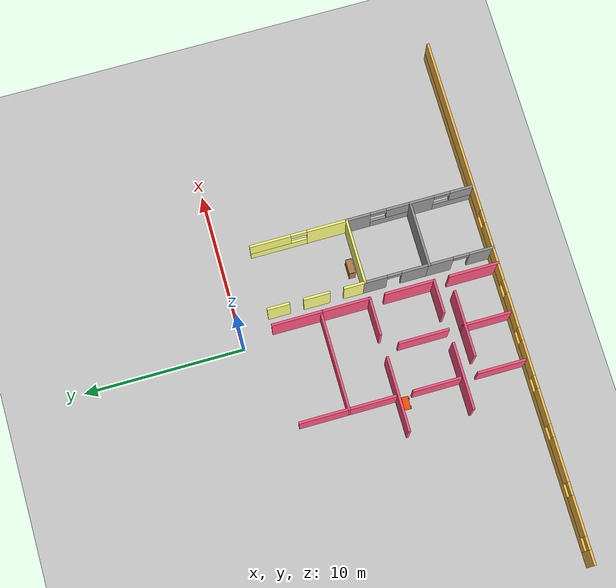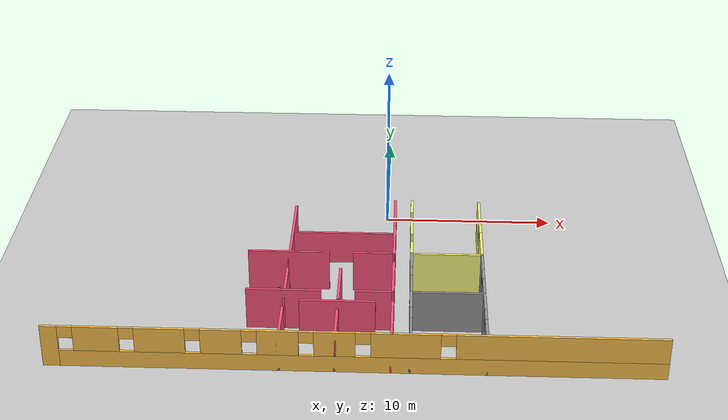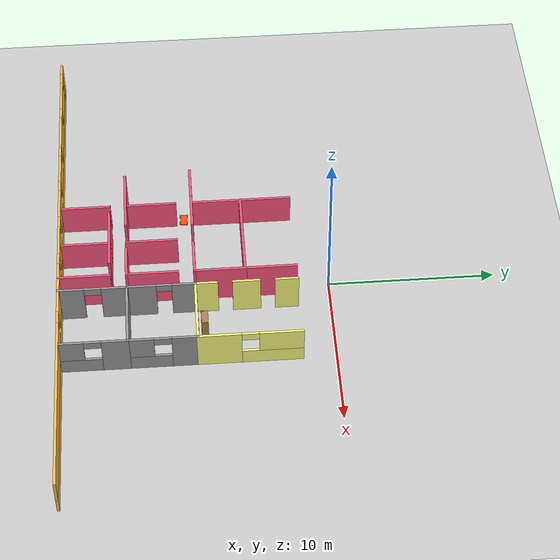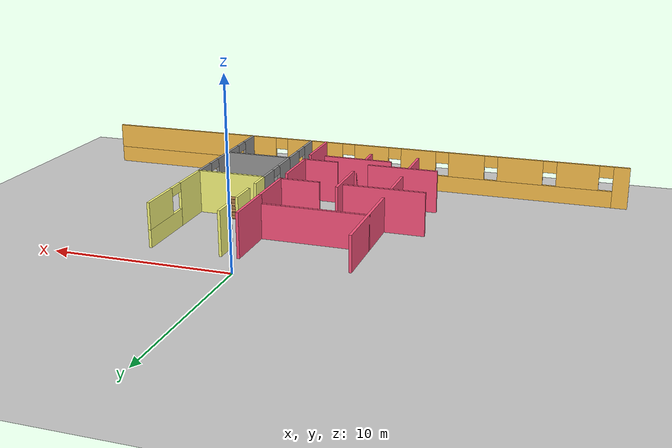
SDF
<sdf version="1.6">
 <world name="default">
  <model name="ground_plane">
   <static>1</static>
   <link name="link">
    <collision name="collision">
     <geometry><plane><normal>0 0 1</normal><size>100 100</size></plane></geometry>
     <surface><friction><ode><mu>100</mu><mu2>50</mu2></ode></friction></surface>
    </collision>
    <visual name="visual">
     <cast_shadows>0</cast_shadows>
     <geometry><plane><normal>0 0 1</normal><size>100 100</size></plane></geometry>
     <material>
      <script><uri>file://media/materials/scripts/gazebo.material</uri><name>Gazebo/Grey</name></script>
     </material>
    </visual>
   </link>
  </model>
  <model name="myWorld">
   <pose>-1.5 0 0 0 -0 0</pose>
   <link name="Wall_0">
    <pose>0 -16 0 0 -0 0</pose>
    <visual name="Wall_0_Visual_0">
     <pose>-16.1125 0 1.25 0 -0 0</pose>
     <geometry><box><size>0.925 0.15 2.5</size></box></geometry>
     <material>
      <script><uri>file://media/materials/scripts/gazebo.material</uri><name>Gazebo/Grey</name></script>
      <ambient>1 0.764706 0.305882 1</ambient>
     </material>
     <meta><layer>0</layer></meta>
    </visual>
    <collision name="Wall_0_Collision_0">
     <geometry><box><size>0.925 0.15 2.5</size></box></geometry>
     <pose>-16.1125 0 1.25 0 -0 0</pose>
    </collision>
    <visual name="Wall_0_Visual_1">
     <pose>0.4625 0 0.5 0 -0 0</pose>
     <geometry><box><size>32.225 0.15 1</size></box></geometry>
     <material>
      <script><uri>file://media/materials/scripts/gazebo.material</uri><name>Gazebo/Grey</name></script>
      <ambient>1 0.764706 0.305882 1</ambient>
     </material>
     <meta><layer>0</layer></meta>
    </visual>
    <collision name="Wall_0_Collision_1">
     <geometry><box><size>32.225 0.15 1</size></box></geometry>
     <pose>0.4625 0 0.5 0 -0 0</pose>
    </collision>
    <visual name="Wall_0_Visual_2">
     <pose>-13.625 0 1.75 0 -0 0</pose>
     <geometry><box><size>2.45 0.15 1.5</size></box></geometry>
     <material>
      <script><uri>file://media/materials/scripts/gazebo.material</uri><name>Gazebo/Grey</name></script>
      <ambient>1 0.764706 0.305882 1</ambient>
     </material>
     <meta><layer>0</layer></meta>
    </visual>
    <collision name="Wall_0_Collision_2">
     <geometry><box><size>2.45 0.15 1.5</size></box></geometry>
     <pose>-13.625 0 1.75 0 -0 0</pose>
    </collision>
    <visual name="Wall_0_Visual_3">
     <pose>-10.25 0 1.75 0 -0 0</pose>
     <geometry><box><size>2.7 0.15 1.5</size></box></geometry>
     <material>
      <script><uri>file://media/materials/scripts/gazebo.material</uri><name>Gazebo/Grey</name></script>
      <ambient>1 0.764706 0.305882 1</ambient>
     </material>
     <meta><layer>0</layer></meta>
    </visual>
    <collision name="Wall_0_Collision_3">
     <geometry><box><size>2.7 0.15 1.5</size></box></geometry>
     <pose>-10.25 0 1.75 0 -0 0</pose>
    </collision>
    <visual name="Wall_0_Visual_4">
     <pose>-7 0 1.75 0 -0 0</pose>
     <geometry><box><size>2.2 0.15 1.5</size></box></geometry>
     <material>
      <script><uri>file://media/materials/scripts/gazebo.material</uri><name>Gazebo/Grey</name></script>
      <ambient>1 0.764706 0.305882 1</ambient>
     </material>
     <meta><layer>0</layer></meta>
    </visual>
    <collision name="Wall_0_Collision_4">
     <geometry><box><size>2.2 0.15 1.5</size></box></geometry>
     <pose>-7 0 1.75 0 -0 0</pose>
    </collision>
    <visual name="Wall_0_Visual_5">
     <pose>-4 0 1.75 0 -0 0</pose>
     <geometry><box><size>2.2 0.15 1.5</size></box></geometry>
     <material>
      <script><uri>file://media/materials/scripts/gazebo.material</uri><name>Gazebo/Grey</name></script>
      <ambient>1 0.764706 0.305882 1</ambient>
     </material>
     <meta><layer>0</layer></meta>
    </visual>
    <collision name="Wall_0_Collision_5">
     <geometry><box><size>2.2 0.15 1.5</size></box></geometry>
     <pose>-4 0 1.75 0 -0 0</pose>
    </collision>
    <visual name="Wall_0_Visual_6">
     <pose>-1 0 1.75 0 -0 0</pose>
     <geometry><box><size>2.2 0.15 1.5</size></box></geometry>
     <material>
      <script><uri>file://media/materials/scripts/gazebo.material</uri><name>Gazebo/Grey</name></script>
      <ambient>1 0.764706 0.305882 1</ambient>
     </material>
     <meta><layer>0</layer></meta>
    </visual>
    <collision name="Wall_0_Collision_6">
     <geometry><box><size>2.2 0.15 1.5</size></box></geometry>
     <pose>-1 0 1.75 0 -0 0</pose>
    </collision>
    <visual name="Wall_0_Visual_7">
     <pose>2.75 0 1.75 0 -0 0</pose>
     <geometry><box><size>3.7 0.15 1.5</size></box></geometry>
     <material>
      <script><uri>file://media/materials/scripts/gazebo.material</uri><name>Gazebo/Grey</name></script>
      <ambient>1 0.764706 0.305882 1</ambient>
     </material>
     <meta><layer>0</layer></meta>
    </visual>
    <collision name="Wall_0_Collision_7">
     <geometry><box><size>3.7 0.15 1.5</size></box></geometry>
     <pose>2.75 0 1.75 0 -0 0</pose>
    </collision>
    <visual name="Wall_0_Visual_8">
     <pose>10.9875 0 1.75 0 -0 0</pose>
     <geometry><box><size>11.175 0.15 1.5</size></box></geometry>
     <material>
      <script><uri>file://media/materials/scripts/gazebo.material</uri><name>Gazebo/Grey</name></script>
      <ambient>1 0.764706 0.305882 1</ambient>
     </material>
     <meta><layer>0</layer></meta>
    </visual>
    <collision name="Wall_0_Collision_8">
     <geometry><box><size>11.175 0.15 1.5</size></box></geometry>
     <pose>10.9875 0 1.75 0 -0 0</pose>
    </collision>
    <visual name="Wall_0_Visual_9">
     <pose>-15.25 0 2.15 0 -0 0</pose>
     <geometry><box><size>0.8 0.15 0.7</size></box></geometry>
     <material>
      <script><uri>file://media/materials/scripts/gazebo.material</uri><name>Gazebo/Grey</name></script>
      <ambient>1 0.764706 0.305882 1</ambient>
     </material>
     <meta><layer>0</layer></meta>
    </visual>
    <collision name="Wall_0_Collision_9">
     <geometry><box><size>0.8 0.15 0.7</size></box></geometry>
     <pose>-15.25 0 2.15 0 -0 0</pose>
    </collision>
    <visual name="Wall_0_Visual_10">
     <pose>-12 0 2.15 0 -0 0</pose>
     <geometry><box><size>0.8 0.15 0.7</size></box></geometry>
     <material>
      <script><uri>file://media/materials/scripts/gazebo.material</uri><name>Gazebo/Grey</name></script>
      <ambient>1 0.764706 0.305882 1</ambient>
     </material>
     <meta><layer>0</layer></meta>
    </visual>
    <collision name="Wall_0_Collision_10">
     <geometry><box><size>0.8 0.15 0.7</size></box></geometry>
     <pose>-12 0 2.15 0 -0 0</pose>
    </collision>
    <visual name="Wall_0_Visual_11">
     <pose>-8.5 0 2.15 0 -0 0</pose>
     <geometry><box><size>0.8 0.15 0.7</size></box></geometry>
     <material>
      <script><uri>file://media/materials/scripts/gazebo.material</uri><name>Gazebo/Grey</name></script>
      <ambient>1 0.764706 0.305882 1</ambient>
     </material>
     <meta><layer>0</layer></meta>
    </visual>
    <collision name="Wall_0_Collision_11">
     <geometry><box><size>0.8 0.15 0.7</size></box></geometry>
     <pose>-8.5 0 2.15 0 -0 0</pose>
    </collision>
    <visual name="Wall_0_Visual_12">
     <pose>-5.5 0 2.15 0 -0 0</pose>
     <geometry><box><size>0.8 0.15 0.7</size></box></geometry>
     <material>
      <script><uri>file://media/materials/scripts/gazebo.material</uri><name>Gazebo/Grey</name></script>
      <ambient>1 0.764706 0.305882 1</ambient>
     </material>
     <meta><layer>0</layer></meta>
    </visual>
    <collision name="Wall_0_Collision_12">
     <geometry><box><size>0.8 0.15 0.7</size></box></geometry>
     <pose>-5.5 0 2.15 0 -0 0</pose>
    </collision>
    <visual name="Wall_0_Visual_13">
     <pose>-2.5 0 2.15 0 -0 0</pose>
     <geometry><box><size>0.8 0.15 0.7</size></box></geometry>
     <material>
      <script><uri>file://media/materials/scripts/gazebo.material</uri><name>Gazebo/Grey</name></script>
      <ambient>1 0.764706 0.305882 1</ambient>
     </material>
     <meta><layer>0</layer></meta>
    </visual>
    <collision name="Wall_0_Collision_13">
     <geometry><box><size>0.8 0.15 0.7</size></box></geometry>
     <pose>-2.5 0 2.15 0 -0 0</pose>
    </collision>
    <visual name="Wall_0_Visual_14">
     <pose>0.5 0 2.15 0 -0 0</pose>
     <geometry><box><size>0.8 0.15 0.7</size></box></geometry>
     <material>
      <script><uri>file://media/materials/scripts/gazebo.material</uri><name>Gazebo/Grey</name></script>
      <ambient>1 0.764706 0.305882 1</ambient>
     </material>
     <meta><layer>0</layer></meta>
    </visual>
    <collision name="Wall_0_Collision_14">
     <geometry><box><size>0.8 0.15 0.7</size></box></geometry>
     <pose>0.5 0 2.15 0 -0 0</pose>
    </collision>
    <visual name="Wall_0_Visual_15">
     <pose>5 0 2.15 0 -0 0</pose>
     <geometry><box><size>0.8 0.15 0.7</size></box></geometry>
     <material>
      <script><uri>file://media/materials/scripts/gazebo.material</uri><name>Gazebo/Grey</name></script>
      <ambient>1 0.764706 0.305882 1</ambient>
     </material>
     <meta><layer>0</layer></meta>
    </visual>
    <collision name="Wall_0_Collision_15">
     <geometry><box><size>0.8 0.15 0.7</size></box></geometry>
     <pose>5 0 2.15 0 -0 0</pose>
    </collision>
   </link>
   <link name="Wall_106">
    <collision name="Wall_106_Collision">
     <geometry><box><size>3.15 0.15 2</size></box></geometry>
     <pose>0 0 1 0 -0 0</pose>
    </collision>
    <visual name="Wall_106_Visual">
     <pose>0 0 1 0 -0 0</pose>
     <geometry><box><size>3.15 0.15 2</size></box></geometry>
     <material>
      <script><uri>file://media/materials/scripts/gazebo.material</uri><name>Gazebo/Grey</name></script>
      <ambient>1 0.333333 0.498039 1</ambient>
     </material>
     <meta><layer>0</layer></meta>
    </visual>
    <pose>-4 -10.5 0 0 0 -1.5708</pose>
   </link>
   <link name="Wall_108">
    <collision name="Wall_108_Collision">
     <geometry><box><size>3.15 0.15 2</size></box></geometry>
     <pose>0 0 1 0 -0 0</pose>
    </collision>
    <visual name="Wall_108_Visual">
     <pose>0 0 1 0 -0 0</pose>
     <geometry><box><size>3.15 0.15 2</size></box></geometry>
     <material>
      <script><uri>file://media/materials/scripts/gazebo.material</uri><name>Gazebo/Grey</name></script>
      <ambient>1 0.333333 0.498039 1</ambient>
     </material>
     <meta><layer>0</layer></meta>
    </visual>
    <pose>-1 -10.5 0 0 0 -1.5708</pose>
   </link>
   <link name="Wall_110">
    <collision name="Wall_110_Collision">
     <geometry><box><size>3.15 0.15 2.5</size></box></geometry>
     <pose>0 0 1.25 0 -0 0</pose>
    </collision>
    <visual name="Wall_110_Visual">
     <pose>0 0 1.25 0 -0 0</pose>
     <geometry><box><size>3.15 0.15 2.5</size></box></geometry>
     <material>
      <script><uri>file://media/materials/scripts/gazebo.material</uri><name>Gazebo/Grey</name></script>
      <ambient>1 0.333333 0.498039 1</ambient>
     </material>
     <meta><layer>0</layer></meta>
    </visual>
    <pose>2 -10.5 0 0 0 -1.5708</pose>
   </link>
   <link name="Wall_118">
    <collision name="Wall_118_Collision">
     <geometry><box><size>4.15 0.15 2.5</size></box></geometry>
     <pose>0 0 1.25 0 -0 0</pose>
    </collision>
    <visual name="Wall_118_Visual">
     <pose>0 0 1.25 0 -0 0</pose>
     <geometry><box><size>4.15 0.15 2.5</size></box></geometry>
     <material>
      <script><uri>file://media/materials/scripts/gazebo.material</uri><name>Gazebo/Grey</name></script>
      <ambient>1 0.333333 0.498039 1</ambient>
     </material>
     <meta><layer>0</layer></meta>
    </visual>
    <pose>-4 -12 0 0 -0 0</pose>
   </link>
   <link name="Wall_120">
    <collision name="Wall_120_Collision">
     <geometry><box><size>2.15 0.15 2.5</size></box></geometry>
     <pose>0 0 1.25 0 -0 0</pose>
    </collision>
    <visual name="Wall_120_Visual">
     <pose>0 0 1.25 0 -0 0</pose>
     <geometry><box><size>2.15 0.15 2.5</size></box></geometry>
     <material>
      <script><uri>file://media/materials/scripts/gazebo.material</uri><name>Gazebo/Grey</name></script>
      <ambient>1 0.333333 0.498039 1</ambient>
     </material>
     <meta><layer>0</layer></meta>
    </visual>
    <pose>1 -12 0 0 -0 0</pose>
   </link>
   <link name="Wall_126">
    <collision name="Wall_126_Collision">
     <geometry><box><size>6.15 0.15 2</size></box></geometry>
     <pose>0 0 1 0 -0 0</pose>
    </collision>
    <visual name="Wall_126_Visual">
     <pose>0 0 1 0 -0 0</pose>
     <geometry><box><size>6.15 0.15 2</size></box></geometry>
     <material>
      <script><uri>file://media/materials/scripts/gazebo.material</uri><name>Gazebo/Grey</name></script>
      <ambient>1 0.333333 0.498039 1</ambient>
     </material>
     <meta><layer>0</layer></meta>
    </visual>
    <pose>-1 -5 0 0 -0 0</pose>
   </link>
   <link name="Wall_127">
    <collision name="Wall_127_Collision">
     <geometry><box><size>3.15 0.15 2.5</size></box></geometry>
     <pose>0 0 1.25 0 -0 0</pose>
    </collision>
    <visual name="Wall_127_Visual">
     <pose>0 0 1.25 0 -0 0</pose>
     <geometry><box><size>3.15 0.15 2.5</size></box></geometry>
     <material>
      <script><uri>file://media/materials/scripts/gazebo.material</uri><name>Gazebo/Grey</name></script>
      <ambient>1 0.333333 0.498039 1</ambient>
     </material>
     <meta><layer>0</layer></meta>
    </visual>
    <pose>2 -6.5 0 0 0 -1.5708</pose>
   </link>
   <link name="Wall_128">
    <collision name="Wall_128_Collision">
     <geometry><box><size>2.4 0.15 2.5</size></box></geometry>
     <pose>0 0 1.25 0 -0 0</pose>
    </collision>
    <visual name="Wall_128_Visual">
     <pose>0 0 1.25 0 -0 0</pose>
     <geometry><box><size>2.4 0.15 2.5</size></box></geometry>
     <material>
      <script><uri>file://media/materials/scripts/gazebo.material</uri><name>Gazebo/Grey</name></script>
      <ambient>1 0.333333 0.498039 1</ambient>
     </material>
     <meta><layer>0</layer></meta>
    </visual>
    <pose>0.875 -8 0 0 -0 3.14159</pose>
   </link>
   <link name="Wall_133">
    <collision name="Wall_133_Collision">
     <geometry><box><size>3.15 0.15 2.5</size></box></geometry>
     <pose>0 0 1.25 0 -0 0</pose>
    </collision>
    <visual name="Wall_133_Visual">
     <pose>0 0 1.25 0 -0 0</pose>
     <geometry><box><size>3.15 0.15 2.5</size></box></geometry>
     <material>
      <script><uri>file://media/materials/scripts/gazebo.material</uri><name>Gazebo/Grey</name></script>
      <ambient>1 0.333333 0.498039 1</ambient>
     </material>
     <meta><layer>0</layer></meta>
    </visual>
    <pose>2 -3.5 0 0 0 -1.5708</pose>
   </link>
   <link name="Wall_151">
    <pose>3 -14 0 0 -0 1.5708</pose>
    <visual name="Wall_151_Visual_0">
     <pose>-1.2875 0 1.25 0 -0 0</pose>
     <geometry><box><size>1.575 0.15 2.5</size></box></geometry>
     <material>
      <script><uri>file://media/materials/scripts/gazebo.material</uri><name>Gazebo/Grey</name></script>
      <ambient>1 1 1 1</ambient>
     </material>
     <meta><layer>0</layer></meta>
    </visual>
    <collision name="Wall_151_Collision_0">
     <geometry><box><size>1.575 0.15 2.5</size></box></geometry>
     <pose>-1.2875 0 1.25 0 -0 0</pose>
    </collision>
    <visual name="Wall_151_Visual_1">
     <pose>1.2875 0 1.25 0 -0 0</pose>
     <geometry><box><size>1.575 0.15 2.5</size></box></geometry>
     <material>
      <script><uri>file://media/materials/scripts/gazebo.material</uri><name>Gazebo/Grey</name></script>
      <ambient>1 1 1 1</ambient>
     </material>
     <meta><layer>0</layer></meta>
    </visual>
    <collision name="Wall_151_Collision_1">
     <geometry><box><size>1.575 0.15 2.5</size></box></geometry>
     <pose>1.2875 0 1.25 0 -0 0</pose>
    </collision>
    <visual name="Wall_151_Visual_2">
     <pose>0 0 2.25 0 -0 0</pose>
     <geometry><box><size>1 0.15 0.5</size></box></geometry>
     <material>
      <script><uri>file://media/materials/scripts/gazebo.material</uri><name>Gazebo/Grey</name></script>
      <ambient>1 1 1 1</ambient>
     </material>
     <meta><layer>0</layer></meta>
    </visual>
    <collision name="Wall_151_Collision_2">
     <geometry><box><size>1 0.15 0.5</size></box></geometry>
     <pose>0 0 2.25 0 -0 0</pose>
    </collision>
   </link>
   <link name="Wall_152">
    <collision name="Wall_152_Collision">
     <geometry><box><size>4.15 0.15 2.5</size></box></geometry>
     <pose>0 0 1.25 0 -0 0</pose>
    </collision>
    <visual name="Wall_152_Visual">
     <pose>0 0 1.25 0 -0 0</pose>
     <geometry><box><size>4.15 0.15 2.5</size></box></geometry>
     <material>
      <script><uri>file://media/materials/scripts/gazebo.material</uri><name>Gazebo/Grey</name></script>
      <ambient>1 1 1 1</ambient>
     </material>
     <meta><layer>0</layer></meta>
    </visual>
    <pose>5 -12 0 0 -0 0</pose>
   </link>
   <link name="Wall_153">
    <pose>7 -14 0 0 0 -1.5708</pose>
    <visual name="Wall_153_Visual_0">
     <pose>-1.2825 0 1.25 0 -0 0</pose>
     <geometry><box><size>1.585 0.15 2.5</size></box></geometry>
     <material>
      <script><uri>file://media/materials/scripts/gazebo.material</uri><name>Gazebo/Grey</name></script>
      <ambient>1 1 1 1</ambient>
     </material>
     <meta><layer>0</layer></meta>
    </visual>
    <collision name="Wall_153_Collision_0">
     <geometry><box><size>1.585 0.15 2.5</size></box></geometry>
     <pose>-1.2825 0 1.25 0 -0 0</pose>
    </collision>
    <visual name="Wall_153_Visual_1">
     <pose>0.7925 0 0.5 0 -0 0</pose>
     <geometry><box><size>2.565 0.15 1</size></box></geometry>
     <material>
      <script><uri>file://media/materials/scripts/gazebo.material</uri><name>Gazebo/Grey</name></script>
      <ambient>1 1 1 1</ambient>
     </material>
     <meta><layer>0</layer></meta>
    </visual>
    <collision name="Wall_153_Collision_1">
     <geometry><box><size>2.565 0.15 1</size></box></geometry>
     <pose>0.7925 0 0.5 0 -0 0</pose>
    </collision>
    <visual name="Wall_153_Visual_2">
     <pose>1.2925 0 1.75 0 -0 0</pose>
     <geometry><box><size>1.565 0.15 1.5</size></box></geometry>
     <material>
      <script><uri>file://media/materials/scripts/gazebo.material</uri><name>Gazebo/Grey</name></script>
      <ambient>1 1 1 1</ambient>
     </material>
     <meta><layer>0</layer></meta>
    </visual>
    <collision name="Wall_153_Collision_2">
     <geometry><box><size>1.565 0.15 1.5</size></box></geometry>
     <pose>1.2925 0 1.75 0 -0 0</pose>
    </collision>
    <visual name="Wall_153_Visual_3">
     <pose>0.01 0 2.25 0 -0 0</pose>
     <geometry><box><size>1 0.15 0.5</size></box></geometry>
     <material>
      <script><uri>file://media/materials/scripts/gazebo.material</uri><name>Gazebo/Grey</name></script>
      <ambient>1 1 1 1</ambient>
     </material>
     <meta><layer>0</layer></meta>
    </visual>
    <collision name="Wall_153_Collision_3">
     <geometry><box><size>1 0.15 0.5</size></box></geometry>
     <pose>0.01 0 2.25 0 -0 0</pose>
    </collision>
   </link>
   <link name="Wall_157">
    <pose>3 -10 0 0 -0 1.5708</pose>
    <visual name="Wall_157_Visual_0">
     <pose>-1.1775 0 1.25 0 -0 0</pose>
     <geometry><box><size>1.795 0.15 2.5</size></box></geometry>
     <material>
      <script><uri>file://media/materials/scripts/gazebo.material</uri><name>Gazebo/Grey</name></script>
      <ambient>1 1 1 1</ambient>
     </material>
     <meta><layer>0</layer></meta>
    </visual>
    <collision name="Wall_157_Collision_0">
     <geometry><box><size>1.795 0.15 2.5</size></box></geometry>
     <pose>-1.1775 0 1.25 0 -0 0</pose>
    </collision>
    <visual name="Wall_157_Visual_1">
     <pose>1.3475 0 1.25 0 -0 0</pose>
     <geometry><box><size>1.455 0.15 2.5</size></box></geometry>
     <material>
      <script><uri>file://media/materials/scripts/gazebo.material</uri><name>Gazebo/Grey</name></script>
      <ambient>1 1 1 1</ambient>
     </material>
     <meta><layer>0</layer></meta>
    </visual>
    <collision name="Wall_157_Collision_1">
     <geometry><box><size>1.455 0.15 2.5</size></box></geometry>
     <pose>1.3475 0 1.25 0 -0 0</pose>
    </collision>
    <visual name="Wall_157_Visual_2">
     <pose>0.17 0 2.25 0 -0 0</pose>
     <geometry><box><size>0.9 0.15 0.5</size></box></geometry>
     <material>
      <script><uri>file://media/materials/scripts/gazebo.material</uri><name>Gazebo/Grey</name></script>
      <ambient>1 1 1 1</ambient>
     </material>
     <meta><layer>0</layer></meta>
    </visual>
    <collision name="Wall_157_Collision_2">
     <geometry><box><size>0.9 0.15 0.5</size></box></geometry>
     <pose>0.17 0 2.25 0 -0 0</pose>
    </collision>
   </link>
   <link name="Wall_158">
    <collision name="Wall_158_Collision">
     <geometry><box><size>4.15 0.15 2.5</size></box></geometry>
     <pose>0 0 1.25 0 -0 0</pose>
    </collision>
    <visual name="Wall_158_Visual">
     <pose>0 0 1.25 0 -0 0</pose>
     <geometry><box><size>4.15 0.15 2.5</size></box></geometry>
     <material>
      <script><uri>file://media/materials/scripts/gazebo.material</uri><name>Gazebo/Grey</name></script>
      <ambient>1 1 0.498039 1</ambient>
     </material>
     <meta><layer>0</layer></meta>
    </visual>
    <pose>5 -8 0 0 -0 0</pose>
   </link>
   <link name="Wall_159">
    <pose>7 -10 0 0 0 -1.5708</pose>
    <visual name="Wall_159_Visual_0">
     <pose>-1.2875 0 1.25 0 -0 0</pose>
     <geometry><box><size>1.575 0.15 2.5</size></box></geometry>
     <material>
      <script><uri>file://media/materials/scripts/gazebo.material</uri><name>Gazebo/Grey</name></script>
      <ambient>1 1 1 1</ambient>
     </material>
     <meta><layer>0</layer></meta>
    </visual>
    <collision name="Wall_159_Collision_0">
     <geometry><box><size>1.575 0.15 2.5</size></box></geometry>
     <pose>-1.2875 0 1.25 0 -0 0</pose>
    </collision>
    <visual name="Wall_159_Visual_1">
     <pose>0.7875 0 0.5 0 -0 0</pose>
     <geometry><box><size>2.575 0.15 1</size></box></geometry>
     <material>
      <script><uri>file://media/materials/scripts/gazebo.material</uri><name>Gazebo/Grey</name></script>
      <ambient>1 1 1 1</ambient>
     </material>
     <meta><layer>0</layer></meta>
    </visual>
    <collision name="Wall_159_Collision_1">
     <geometry><box><size>2.575 0.15 1</size></box></geometry>
     <pose>0.7875 0 0.5 0 -0 0</pose>
    </collision>
    <visual name="Wall_159_Visual_2">
     <pose>1.2875 0 1.75 0 -0 0</pose>
     <geometry><box><size>1.575 0.15 1.5</size></box></geometry>
     <material>
      <script><uri>file://media/materials/scripts/gazebo.material</uri><name>Gazebo/Grey</name></script>
      <ambient>1 1 1 1</ambient>
     </material>
     <meta><layer>0</layer></meta>
    </visual>
    <collision name="Wall_159_Collision_2">
     <geometry><box><size>1.575 0.15 1.5</size></box></geometry>
     <pose>1.2875 0 1.75 0 -0 0</pose>
    </collision>
    <visual name="Wall_159_Visual_3">
     <pose>0 0 2.25 0 -0 0</pose>
     <geometry><box><size>1 0.15 0.5</size></box></geometry>
     <material>
      <script><uri>file://media/materials/scripts/gazebo.material</uri><name>Gazebo/Grey</name></script>
      <ambient>1 1 1 1</ambient>
     </material>
     <meta><layer>0</layer></meta>
    </visual>
    <collision name="Wall_159_Collision_3">
     <geometry><box><size>1 0.15 0.5</size></box></geometry>
     <pose>0 0 2.25 0 -0 0</pose>
    </collision>
   </link>
   <link name="Wall_161">
    <pose>7 -5 0 0 -0 1.5708</pose>
    <visual name="Wall_161_Visual_0">
     <pose>-1.7875 0 1.25 0 -0 0</pose>
     <geometry><box><size>2.575 0.15 2.5</size></box></geometry>
     <material>
      <script><uri>file://media/materials/scripts/gazebo.material</uri><name>Gazebo/Grey</name></script>
      <ambient>1 1 0.498039 1</ambient>
     </material>
     <meta><layer>0</layer></meta>
    </visual>
    <collision name="Wall_161_Collision_0">
     <geometry><box><size>2.575 0.15 2.5</size></box></geometry>
     <pose>-1.7875 0 1.25 0 -0 0</pose>
    </collision>
    <visual name="Wall_161_Visual_1">
     <pose>1.2875 0 0.5 0 -0 0</pose>
     <geometry><box><size>3.575 0.15 1</size></box></geometry>
     <material>
      <script><uri>file://media/materials/scripts/gazebo.material</uri><name>Gazebo/Grey</name></script>
      <ambient>1 1 0.498039 1</ambient>
     </material>
     <meta><layer>0</layer></meta>
    </visual>
    <collision name="Wall_161_Collision_1">
     <geometry><box><size>3.575 0.15 1</size></box></geometry>
     <pose>1.2875 0 0.5 0 -0 0</pose>
    </collision>
    <visual name="Wall_161_Visual_2">
     <pose>1.7875 0 1.75 0 -0 0</pose>
     <geometry><box><size>2.575 0.15 1.5</size></box></geometry>
     <material>
      <script><uri>file://media/materials/scripts/gazebo.material</uri><name>Gazebo/Grey</name></script>
      <ambient>1 1 0.498039 1</ambient>
     </material>
     <meta><layer>0</layer></meta>
    </visual>
    <collision name="Wall_161_Collision_2">
     <geometry><box><size>2.575 0.15 1.5</size></box></geometry>
     <pose>1.7875 0 1.75 0 -0 0</pose>
    </collision>
    <visual name="Wall_161_Visual_3">
     <pose>1.7875 0 1.75 0 -0 0</pose>
     <geometry><box><size>2.575 0.15 1.5</size></box></geometry>
     <material>
      <script><uri>file://media/materials/scripts/gazebo.material</uri><name>Gazebo/Grey</name></script>
      <ambient>1 1 0.498039 1</ambient>
     </material>
     <meta><layer>0</layer></meta>
    </visual>
    <collision name="Wall_161_Collision_3">
     <geometry><box><size>2.575 0.15 1.5</size></box></geometry>
     <pose>1.7875 0 1.75 0 -0 0</pose>
    </collision>
    <visual name="Wall_161_Visual_4">
     <pose>0 0 2.25 0 -0 0</pose>
     <geometry><box><size>1 0.15 0.5</size></box></geometry>
     <material>
      <script><uri>file://media/materials/scripts/gazebo.material</uri><name>Gazebo/Grey</name></script>
      <ambient>1 1 0.498039 1</ambient>
     </material>
     <meta><layer>0</layer></meta>
    </visual>
    <collision name="Wall_161_Collision_4">
     <geometry><box><size>1 0.15 0.5</size></box></geometry>
     <pose>0 0 2.25 0 -0 0</pose>
    </collision>
   </link>
   <link name="Wall_165">
    <collision name="Wall_165_Collision">
     <geometry><box><size>1.4 0.15 2.5</size></box></geometry>
     <pose>0 0 1.25 0 -0 0</pose>
    </collision>
    <visual name="Wall_165_Visual">
     <pose>0 0 1.25 0 -0 0</pose>
     <geometry><box><size>1.4 0.15 2.5</size></box></geometry>
     <material>
      <script><uri>file://media/materials/scripts/gazebo.material</uri><name>Gazebo/Grey</name></script>
      <ambient>1 1 0.498039 1</ambient>
     </material>
     <meta><layer>0</layer></meta>
    </visual>
    <pose>3 -2.625 0 0 0 -1.5708</pose>
   </link>
   <link name="Wall_167">
    <collision name="Wall_167_Collision">
     <geometry><box><size>1.65 0.15 2.5</size></box></geometry>
     <pose>0 0 1.25 0 -0 0</pose>
    </collision>
    <visual name="Wall_167_Visual">
     <pose>0 0 1.25 0 -0 0</pose>
     <geometry><box><size>1.65 0.15 2.5</size></box></geometry>
     <material>
      <script><uri>file://media/materials/scripts/gazebo.material</uri><name>Gazebo/Grey</name></script>
      <ambient>1 1 0.498039 1</ambient>
     </material>
     <meta><layer>0</layer></meta>
    </visual>
    <pose>3 -5 0 0 0 -1.5708</pose>
   </link>
   <link name="Wall_169">
    <collision name="Wall_169_Collision">
     <geometry><box><size>1.4 0.15 2.5</size></box></geometry>
     <pose>0 0 1.25 0 -0 0</pose>
    </collision>
    <visual name="Wall_169_Visual">
     <pose>0 0 1.25 0 -0 0</pose>
     <geometry><box><size>1.4 0.15 2.5</size></box></geometry>
     <material>
      <script><uri>file://media/materials/scripts/gazebo.material</uri><name>Gazebo/Grey</name></script>
      <ambient>1 1 0.498039 1</ambient>
     </material>
     <meta><layer>0</layer></meta>
    </visual>
    <pose>3 -7.375 0 0 -0 1.5708</pose>
   </link>
   <link name="Wall_48">
    <collision name="Wall_48_Collision">
     <geometry><box><size>6.15 0.15 2</size></box></geometry>
     <pose>0 0 1 0 -0 0</pose>
    </collision>
    <visual name="Wall_48_Visual">
     <pose>0 0 1 0 -0 0</pose>
     <geometry><box><size>6.15 0.15 2</size></box></geometry>
     <material>
      <script><uri>file://media/materials/scripts/gazebo.material</uri><name>Gazebo/Grey</name></script>
      <ambient>1 0.333333 0.498039 1</ambient>
     </material>
     <meta><layer>0</layer></meta>
    </visual>
    <pose>-4 -5 0 0 -0 1.5708</pose>
   </link>
   <link name="Wall_57">
    <collision name="Wall_57_Collision">
     <geometry><box><size>3.15 0.15 2</size></box></geometry>
     <pose>0 0 1 0 -0 0</pose>
    </collision>
    <visual name="Wall_57_Visual">
     <pose>0 0 1 0 -0 0</pose>
     <geometry><box><size>3.15 0.15 2</size></box></geometry>
     <material>
      <script><uri>file://media/materials/scripts/gazebo.material</uri><name>Gazebo/Grey</name></script>
      <ambient>1 0.333333 0.498039 1</ambient>
     </material>
     <meta><layer>0</layer></meta>
    </visual>
    <pose>-4 -14.5 0 0 -0 1.5708</pose>
   </link>
   <link name="Wall_64">
    <collision name="Wall_64_Collision">
     <geometry><box><size>3.15 0.15 2</size></box></geometry>
     <pose>0 0 1 0 -0 0</pose>
    </collision>
    <visual name="Wall_64_Visual">
     <pose>0 0 1 0 -0 0</pose>
     <geometry><box><size>3.15 0.15 2</size></box></geometry>
     <material>
      <script><uri>file://media/materials/scripts/gazebo.material</uri><name>Gazebo/Grey</name></script>
      <ambient>1 0.333333 0.498039 1</ambient>
     </material>
     <meta><layer>0</layer></meta>
    </visual>
    <pose>-1 -14.5 0 0 -0 1.5708</pose>
   </link>
   <link name="Wall_68">
    <collision name="Wall_68_Collision">
     <geometry><box><size>4.15 0.15 2.5</size></box></geometry>
     <pose>0 0 1.25 0 -0 0</pose>
    </collision>
    <visual name="Wall_68_Visual">
     <pose>0 0 1.25 0 -0 0</pose>
     <geometry><box><size>4.15 0.15 2.5</size></box></geometry>
     <material>
      <script><uri>file://media/materials/scripts/gazebo.material</uri><name>Gazebo/Grey</name></script>
      <ambient>1 0.333333 0.498039 1</ambient>
     </material>
     <meta><layer>0</layer></meta>
    </visual>
    <pose>-1 -13 0 0 -0 0</pose>
   </link>
   <link name="Wall_70">
    <collision name="Wall_70_Collision">
     <geometry><box><size>3.15 0.15 2.5</size></box></geometry>
     <pose>0 0 1.25 0 -0 0</pose>
    </collision>
    <visual name="Wall_70_Visual">
     <pose>0 0 1.25 0 -0 0</pose>
     <geometry><box><size>3.15 0.15 2.5</size></box></geometry>
     <material>
      <script><uri>file://media/materials/scripts/gazebo.material</uri><name>Gazebo/Grey</name></script>
      <ambient>1 0.333333 0.498039 1</ambient>
     </material>
     <meta><layer>0</layer></meta>
    </visual>
    <pose>2 -14.5 0 0 -0 1.5708</pose>
   </link>
   <link name="Wall_76">
    <collision name="Wall_76_Collision">
     <geometry><box><size>4.65 0.15 2.5</size></box></geometry>
     <pose>0 0 1.25 0 -0 0</pose>
    </collision>
    <visual name="Wall_76_Visual">
     <pose>0 0 1.25 0 -0 0</pose>
     <geometry><box><size>4.65 0.15 2.5</size></box></geometry>
     <material>
      <script><uri>file://media/materials/scripts/gazebo.material</uri><name>Gazebo/Grey</name></script>
      <ambient>1 0.333333 0.498039 1</ambient>
     </material>
     <meta><layer>0</layer></meta>
    </visual>
    <pose>-4 -8 0 0 -0 0</pose>
   </link>
   <static>1</static>
  </model>
  <model name="bookshelf_clone_0_clone">
   <static>1</static>
   <link name="link">
    <inertial><mass>1</mass></inertial>
    <collision name="back">
     <pose>0 0.005 0.6 0 -0 0</pose>
     <geometry><box><size>0.9 0.01 1.2</size></box></geometry>
    </collision>
    <visual name="visual1">
     <pose>0 0.005 0.6 0 -0 0</pose>
     <geometry><box><size>0.9 0.01 1.2</size></box></geometry>
     <material>
      <script><uri>file://media/materials/scripts/gazebo.material</uri><name>Gazebo/Wood</name></script>
     </material>
    </visual>
    <collision name="left_side">
     <pose>0.45 -0.195 0.6 0 -0 0</pose>
     <geometry><box><size>0.02 0.4 1.2</size></box></geometry>
    </collision>
    <visual name="visual2">
     <pose>0.45 -0.195 0.6 0 -0 0</pose>
     <geometry><box><size>0.02 0.4 1.2</size></box></geometry>
     <material>
      <script><uri>file://media/materials/scripts/gazebo.material</uri><name>Gazebo/Wood</name></script>
     </material>
    </visual>
    <collision name="right_side">
     <pose>-0.45 -0.195 0.6 0 -0 0</pose>
     <geometry><box><size>0.02 0.4 1.2</size></box></geometry>
    </collision>
    <visual name="visual3">
     <pose>-0.45 -0.195 0.6 0 -0 0</pose>
     <geometry><box><size>0.02 0.4 1.2</size></box></geometry>
     <material>
      <script><uri>file://media/materials/scripts/gazebo.material</uri><name>Gazebo/Wood</name></script>
     </material>
    </visual>
    <collision name="bottom">
     <pose>0 -0.195 0.03 0 -0 0</pose>
     <geometry><box><size>0.88 0.4 0.06</size></box></geometry>
    </collision>
    <visual name="visual4">
     <pose>0 -0.195 0.03 0 -0 0</pose>
     <geometry><box><size>0.88 0.4 0.06</size></box></geometry>
     <material>
      <script><uri>file://media/materials/scripts/gazebo.material</uri><name>Gazebo/Wood</name></script>
     </material>
    </visual>
    <collision name="top">
     <pose>0 -0.195 1.19 0 -0 0</pose>
     <geometry><box><size>0.88 0.4 0.02</size></box></geometry>
    </collision>
    <visual name="visual5">
     <pose>0 -0.195 1.19 0 -0 0</pose>
     <geometry><box><size>0.88 0.4 0.02</size></box></geometry>
     <material>
      <script><uri>file://media/materials/scripts/gazebo.material</uri><name>Gazebo/Wood</name></script>
     </material>
    </visual>
    <collision name="low_shelf">
     <pose>0 -0.195 0.43 0 -0 0</pose>
     <geometry><box><size>0.88 0.4 0.02</size></box></geometry>
    </collision>
    <visual name="visual6">
     <pose>0 -0.195 0.43 0 -0 0</pose>
     <geometry><box><size>0.88 0.4 0.02</size></box></geometry>
     <material>
      <script><uri>file://media/materials/scripts/gazebo.material</uri><name>Gazebo/Wood</name></script>
     </material>
    </visual>
    <collision name="high_shelf">
     <pose>0 -0.195 0.8 0 -0 0</pose>
     <geometry><box><size>0.88 0.4 0.02</size></box></geometry>
    </collision>
    <visual name="visual7">
     <pose>0 -0.195 0.8 0 -0 0</pose>
     <geometry><box><size>0.88 0.4 0.02</size></box></geometry>
     <material>
      <script><uri>file://media/materials/scripts/gazebo.material</uri><name>Gazebo/Wood</name></script>
     </material>
    </visual>
   </link>
   <pose>3 -7.75 0 0 -0 3.14159</pose>
  </model>
  <model name="myRobot_1">
   <link name="link_0">
    <pose>0.008 1e-06 0 0 -0 0</pose>
    <inertial>
     <mass>1</mass>
     <inertia>
      <ixx>0.166667</ixx>
      <ixy>0</ixy>
      <ixz>0</ixz>
      <iyy>0.166667</iyy>
      <iyz>0</iyz>
      <izz>0.166667</izz>
     </inertia>
    </inertial>
    <visual name="visual">
     <geometry><box><size>0.8 0.4 0.05</size></box></geometry>
     <material>
      <lighting>1</lighting>
      <script><uri>file://media/materials/scripts/gazebo.material</uri><name>Gazebo/Grey</name></script>
      <shader type="pixel"><normal_map>__default__</normal_map></shader>
      <ambient>1 0.3 0 1</ambient>
      <diffuse>0.7 0.7 0.7 1</diffuse>
      <specular>0.01 0.01 0.01 1</specular>
      <emissive>0 0 0 1</emissive>
     </material>
    </visual>
    <collision name="collision">
     <geometry><box><size>0.8 0.4 0.05</size></box></geometry>
     <surface>
      <friction>
       <ode><mu>1</mu><mu2>1</mu2><fdir1>0 0 0</fdir1><slip1>0</slip1><slip2>0</slip2></ode>
       <torsional>
        <coefficient>1</coefficient>
        <patch_radius>0</patch_radius>
        <surface_radius>0</surface_radius>
        <use_patch_radius>1</use_patch_radius>
        <ode><slip>0</slip></ode>
       </torsional>
      </friction>
      <bounce><restitution_coefficient>0</restitution_coefficient><threshold>1e+06</threshold></bounce>
      <contact>
       <collide_without_contact>0</collide_without_contact>
       <collide_without_contact_bitmask>1</collide_without_contact_bitmask>
       <collide_bitmask>1</collide_bitmask>
       <ode>
        <soft_cfm>0</soft_cfm>
        <soft_erp>0.2</soft_erp>
        <kp>1e+13</kp>
        <kd>1</kd>
        <max_vel>0.01</max_vel>
        <min_depth>0</min_depth>
       </ode>
       <bullet>
        <split_impulse>1</split_impulse>
        <split_impulse_penetration_threshold>-0.01</split_impulse_penetration_threshold>
        <soft_cfm>0</soft_cfm>
        <soft_erp>0.2</soft_erp>
        <kp>1e+13</kp>
        <kd>1</kd>
       </bullet>
      </contact>
     </surface>
    </collision>
   </link>
   <link name="link_1">
    <pose>0.268 -0.225013 0 1.5707 -0 0</pose>
    <inertial>
     <mass>1</mass>
     <inertia><ixx>0.145833</ixx><ixy>0</ixy><ixz>0</ixz><iyy>0.145833</iyy><iyz>0</iyz><izz>0.125</izz></inertia>
    </inertial>
    <visual name="visual">
     <geometry><cylinder><radius>0.1</radius><length>0.05</length></cylinder></geometry>
     <material>
      <lighting>1</lighting>
      <script><uri>file://media/materials/scripts/gazebo.material</uri><name>Gazebo/Grey</name></script>
      <shader type="pixel"><normal_map>__default__</normal_map></shader>
      <ambient>1 1 1 1</ambient>
      <diffuse>0.7 0.7 0.7 1</diffuse>
      <specular>0.01 0.01 0.01 1</specular>
      <emissive>0 0 0 1</emissive>
     </material>
    </visual>
    <collision name="collision">
     <geometry><cylinder><radius>0.1</radius><length>0.05</length></cylinder></geometry>
     <surface>
      <friction>
       <ode><mu>1</mu><mu2>1</mu2><fdir1>0 0 0</fdir1><slip1>0</slip1><slip2>0</slip2></ode>
       <torsional>
        <coefficient>1</coefficient>
        <patch_radius>0</patch_radius>
        <surface_radius>0</surface_radius>
        <use_patch_radius>1</use_patch_radius>
        <ode><slip>0</slip></ode>
       </torsional>
      </friction>
      <bounce><restitution_coefficient>0</restitution_coefficient><threshold>1e+06</threshold></bounce>
      <contact>
       <collide_without_contact>0</collide_without_contact>
       <collide_without_contact_bitmask>1</collide_without_contact_bitmask>
       <collide_bitmask>1</collide_bitmask>
       <ode>
        <soft_cfm>0</soft_cfm>
        <soft_erp>0.2</soft_erp>
        <kp>1e+13</kp>
        <kd>1</kd>
        <max_vel>0.01</max_vel>
        <min_depth>0</min_depth>
       </ode>
       <bullet>
        <split_impulse>1</split_impulse>
        <split_impulse_penetration_threshold>-0.01</split_impulse_penetration_threshold>
        <soft_cfm>0</soft_cfm>
        <soft_erp>0.2</soft_erp>
        <kp>1e+13</kp>
        <kd>1</kd>
       </bullet>
      </contact>
     </surface>
    </collision>
   </link>
   <link name="link_1_clone">
    <pose>-0.292 -0.225009 0 1.5707 -0 0</pose>
    <inertial>
     <mass>1</mass>
     <inertia><ixx>0.145833</ixx><ixy>0</ixy><ixz>0</ixz><iyy>0.145833</iyy><iyz>0</iyz><izz>0.125</izz></inertia>
    </inertial>
    <visual name="visual">
     <geometry><cylinder><radius>0.1</radius><length>0.05</length></cylinder></geometry>
     <material>
      <lighting>1</lighting>
      <script><uri>file://media/materials/scripts/gazebo.material</uri><name>Gazebo/Grey</name></script>
      <shader type="pixel"><normal_map>__default__</normal_map></shader>
      <ambient>1 1 1 1</ambient>
      <diffuse>0.7 0.7 0.7 1</diffuse>
      <specular>0.01 0.01 0.01 1</specular>
      <emissive>0 0 0 1</emissive>
     </material>
    </visual>
    <collision name="collision">
     <geometry><cylinder><radius>0.1</radius><length>0.05</length></cylinder></geometry>
     <surface>
      <friction>
       <ode><mu>1</mu><mu2>1</mu2><fdir1>0 0 0</fdir1><slip1>0</slip1><slip2>0</slip2></ode>
       <torsional>
        <coefficient>1</coefficient>
        <patch_radius>0</patch_radius>
        <surface_radius>0</surface_radius>
        <use_patch_radius>1</use_patch_radius>
        <ode><slip>0</slip></ode>
       </torsional>
      </friction>
      <bounce><restitution_coefficient>0</restitution_coefficient><threshold>1e+06</threshold></bounce>
      <contact>
       <collide_without_contact>0</collide_without_contact>
       <collide_without_contact_bitmask>1</collide_without_contact_bitmask>
       <collide_bitmask>1</collide_bitmask>
       <ode>
        <soft_cfm>0</soft_cfm>
        <soft_erp>0.2</soft_erp>
        <kp>1e+13</kp>
        <kd>1</kd>
        <max_vel>0.01</max_vel>
        <min_depth>0</min_depth>
       </ode>
       <bullet>
        <split_impulse>1</split_impulse>
        <split_impulse_penetration_threshold>-0.01</split_impulse_penetration_threshold>
        <soft_cfm>0</soft_cfm>
        <soft_erp>0.2</soft_erp>
        <kp>1e+13</kp>
        <kd>1</kd>
       </bullet>
      </contact>
     </surface>
    </collision>
   </link>
   <link name="link_1_clone_0">
    <pose>0.308 0.22501 0 1.5707 -0 0</pose>
    <inertial>
     <mass>1</mass>
     <inertia><ixx>0.145833</ixx><ixy>0</ixy><ixz>0</ixz><iyy>0.145833</iyy><iyz>0</iyz><izz>0.125</izz></inertia>
    </inertial>
    <visual name="visual">
     <geometry><cylinder><radius>0.1</radius><length>0.05</length></cylinder></geometry>
     <material>
      <lighting>1</lighting>
      <script><uri>file://media/materials/scripts/gazebo.material</uri><name>Gazebo/Grey</name></script>
      <shader type="pixel"><normal_map>__default__</normal_map></shader>
      <ambient>1 1 1 1</ambient>
      <diffuse>0.7 0.7 0.7 1</diffuse>
      <specular>0.01 0.01 0.01 1</specular>
      <emissive>0 0 0 1</emissive>
     </material>
    </visual>
    <collision name="collision">
     <geometry><cylinder><radius>0.1</radius><length>0.05</length></cylinder></geometry>
     <surface>
      <friction>
       <ode><mu>1</mu><mu2>1</mu2><fdir1>0 0 0</fdir1><slip1>0</slip1><slip2>0</slip2></ode>
       <torsional>
        <coefficient>1</coefficient>
        <patch_radius>0</patch_radius>
        <surface_radius>0</surface_radius>
        <use_patch_radius>1</use_patch_radius>
        <ode><slip>0</slip></ode>
       </torsional>
      </friction>
      <bounce><restitution_coefficient>0</restitution_coefficient><threshold>1e+06</threshold></bounce>
      <contact>
       <collide_without_contact>0</collide_without_contact>
       <collide_without_contact_bitmask>1</collide_without_contact_bitmask>
       <collide_bitmask>1</collide_bitmask>
       <ode>
        <soft_cfm>0</soft_cfm>
        <soft_erp>0.2</soft_erp>
        <kp>1e+13</kp>
        <kd>1</kd>
        <max_vel>0.01</max_vel>
        <min_depth>0</min_depth>
       </ode>
       <bullet>
        <split_impulse>1</split_impulse>
        <split_impulse_penetration_threshold>-0.01</split_impulse_penetration_threshold>
        <soft_cfm>0</soft_cfm>
        <soft_erp>0.2</soft_erp>
        <kp>1e+13</kp>
        <kd>1</kd>
       </bullet>
      </contact>
     </surface>
    </collision>
   </link>
   <link name="link_1_clone_1">
    <pose>-0.292 0.22501 0 1.5707 -0 0</pose>
    <inertial>
     <mass>1</mass>
     <inertia><ixx>0.145833</ixx><ixy>0</ixy><ixz>0</ixz><iyy>0.145833</iyy><iyz>0</iyz><izz>0.125</izz></inertia>
    </inertial>
    <visual name="visual">
     <geometry><cylinder><radius>0.1</radius><length>0.05</length></cylinder></geometry>
     <material>
      <lighting>1</lighting>
      <script><uri>file://media/materials/scripts/gazebo.material</uri><name>Gazebo/Grey</name></script>
      <shader type="pixel"><normal_map>__default__</normal_map></shader>
      <ambient>1 1 1 1</ambient>
      <diffuse>0.7 0.7 0.7 1</diffuse>
      <specular>0.01 0.01 0.01 1</specular>
      <emissive>0 0 0 1</emissive>
     </material>
    </visual>
    <collision name="collision">
     <geometry><cylinder><radius>0.1</radius><length>0.05</length></cylinder></geometry>
     <surface>
      <friction>
       <ode><mu>1</mu><mu2>1</mu2><fdir1>0 0 0</fdir1><slip1>0</slip1><slip2>0</slip2></ode>
       <torsional>
        <coefficient>1</coefficient>
        <patch_radius>0</patch_radius>
        <surface_radius>0</surface_radius>
        <use_patch_radius>1</use_patch_radius>
        <ode><slip>0</slip></ode>
       </torsional>
      </friction>
      <bounce><restitution_coefficient>0</restitution_coefficient><threshold>1e+06</threshold></bounce>
      <contact>
       <collide_without_contact>0</collide_without_contact>
       <collide_without_contact_bitmask>1</collide_without_contact_bitmask>
       <collide_bitmask>1</collide_bitmask>
       <ode>
        <soft_cfm>0</soft_cfm>
        <soft_erp>0.2</soft_erp>
        <kp>1e+13</kp>
        <kd>1</kd>
        <max_vel>0.01</max_vel>
        <min_depth>0</min_depth>
       </ode>
       <bullet>
        <split_impulse>1</split_impulse>
        <split_impulse_penetration_threshold>-0.01</split_impulse_penetration_threshold>
        <soft_cfm>0</soft_cfm>
        <soft_erp>0.2</soft_erp>
        <kp>1e+13</kp>
        <kd>1</kd>
       </bullet>
      </contact>
     </surface>
    </collision>
   </link>
   <joint name="link_0_JOINT_1" type="revolute">
    <parent>link_0</parent>
    <child>link_1</child>
    <axis>
     <xyz>0 0 1</xyz>
     <use_parent_model_frame>0</use_parent_model_frame>
     <limit>
      <lower>-1.79769e+308</lower>
      <upper>1.79769e+308</upper>
      <effort>-1</effort>
      <velocity>-1</velocity>
     </limit>
     <dynamics>
      <spring_reference>0</spring_reference>
      <spring_stiffness>0</spring_stiffness>
      <damping>0</damping>
     </dynamics>
    </axis>
    <physics>
     <ode><limit><cfm>0</cfm><erp>0.2</erp></limit><suspension><cfm>0</cfm><erp>0.2</erp></suspension></ode>
    </physics>
   </joint>
   <joint name="link_0_JOINT_2" type="revolute">
    <parent>link_0</parent>
    <child>link_1_clone</child>
    <axis>
     <xyz>0 0 1</xyz>
     <use_parent_model_frame>0</use_parent_model_frame>
     <limit>
      <lower>-1.79769e+308</lower>
      <upper>1.79769e+308</upper>
      <effort>-1</effort>
      <velocity>-1</velocity>
     </limit>
     <dynamics>
      <spring_reference>0</spring_reference>
      <spring_stiffness>0</spring_stiffness>
      <damping>0</damping>
     </dynamics>
    </axis>
    <physics>
     <ode><limit><cfm>0</cfm><erp>0.2</erp></limit><suspension><cfm>0</cfm><erp>0.2</erp></suspension></ode>
    </physics>
   </joint>
   <joint name="link_0_JOINT_3" type="revolute">
    <parent>link_0</parent>
    <child>link_1_clone_0</child>
    <axis>
     <xyz>0 0 1</xyz>
     <use_parent_model_frame>0</use_parent_model_frame>
     <limit>
      <lower>-1.79769e+308</lower>
      <upper>1.79769e+308</upper>
      <effort>-1</effort>
      <velocity>-1</velocity>
     </limit>
     <dynamics>
      <spring_reference>0</spring_reference>
      <spring_stiffness>0</spring_stiffness>
      <damping>0</damping>
     </dynamics>
    </axis>
    <physics>
     <ode><limit><cfm>0</cfm><erp>0.2</erp></limit><suspension><cfm>0</cfm><erp>0.2</erp></suspension></ode>
    </physics>
   </joint>
   <joint name="link_0_JOINT_4" type="revolute">
    <parent>link_0</parent>
    <child>link_1_clone_1</child>
    <axis>
     <xyz>0 0 1</xyz>
     <use_parent_model_frame>0</use_parent_model_frame>
     <limit>
      <lower>-1.79769e+308</lower>
      <upper>1.79769e+308</upper>
      <effort>-1</effort>
      <velocity>-1</velocity>
     </limit>
     <dynamics>
      <spring_reference>0</spring_reference>
      <spring_stiffness>0</spring_stiffness>
      <damping>0</damping>
     </dynamics>
    </axis>
    <physics>
     <ode><limit><cfm>0</cfm><erp>0.2</erp></limit><suspension><cfm>0</cfm><erp>0.2</erp></suspension></ode>
    </physics>
   </joint>
   <static>0</static>
   <pose>-5.83086 -8.51128 0.109999 -4e-06 8e-06 -0.039274</pose>
  </model>
 </world>
</sdf>
